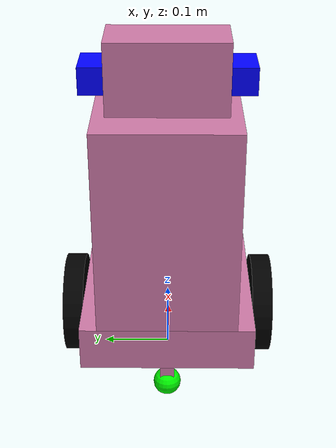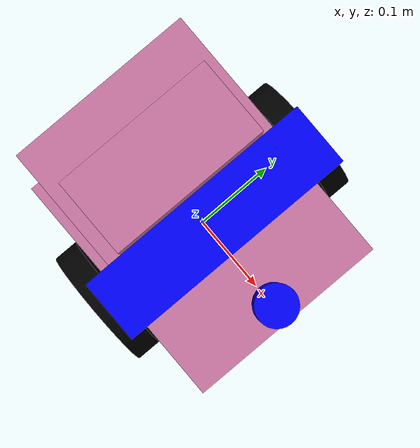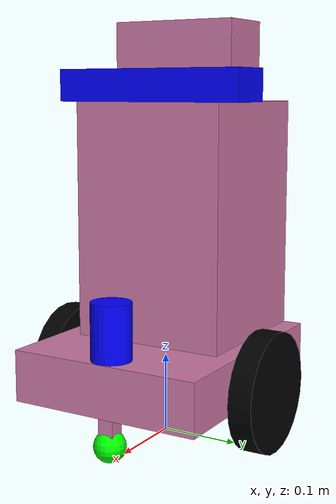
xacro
<?xml version="1.0"?>
<robot name="my_robo"
  xmlns:xacro="http://ros.org/wiki/xacro">

  <xacro:property name="M_PI" value="3.14159274"/>

  <xacro:include filename="$(find se2c_rgbdw_slam)/urdf/imu.urdf.xacro" />
  <xacro:include filename="$(find se2c_rgbdw_slam)/urdf/color.urdf.xacro" />
  <xacro:include filename="$(find se2c_rgbdw_slam)/urdf/my_robo_laser.urdf.xacro" />
  <xacro:include filename="$(find se2c_rgbdw_slam)/urdf/my_robo_camera.urdf.xacro" />

  <xacro:imu_macro parent="base_link" prefix="imu" xyz="0 0 0" />

  <!-- link -->
  <link name="base_footprint"/>

  <joint name="base_link_joint" type="fixed">
    <parent link="base_footprint"/>
    <child link="base_link"/>
    <origin xyz="0 0 0.0925"/>
  </joint>

  <link name="base_link">
    <visual name = "base">
      <geometry>
        <box size="0.300 0.25 0.065"/>
      </geometry>
    </visual>

    <visual name="body">
      <geometry>
        <box size="0.200 0.200 0.300"/>
      </geometry>
      <origin xyz="-0.05 0 0.1825" rpy="0 0 0"/>
    </visual>

    <visual name="top">
      <geometry>
        <box size="0.080 0.165 0.100"/>
      </geometry>
      <origin xyz="-0.055 0 0.3825" rpy="0 0 0"/>
    </visual>

    <visual name="front_caster_assist">
      <geometry>
        <box size="0.02 0.02 0.04"/>
      </geometry>
      <origin xyz="0.130 0 -0.0525"/>
    </visual>

    <visual name="back_caster_assist">
      <geometry>
        <box size="0.02 0.02 0.04"/>
      </geometry>
      <origin xyz="-0.130 0 -0.0525"/>
    </visual>

    <collision nane = "base">
      <geometry>
        <box size="0.300 0.250 0.065"/>
      </geometry>
      <origin xyz="0 0 0" rpy="0 0 0"/>
    </collision>

    <collision nane = "body">
      <geometry>
        <box size="0.200 0.250 0.4"/>
      </geometry>
      <origin xyz="-0.05 0 0.2325" rpy="0 0 0"/>
    </collision>

    <collision nane = "bottom">
      <geometry>
        <box size="0.300 0.250 0.05"/>
      </geometry>
      <origin xyz="0 0 -0.0575" rpy="0 0 0"/>
    </collision>

    <inertial>
      <origin xyz="-0.05 0 0.0575"/>
      <mass value="5.800"/>
      <!--battery1.6kg, mainRobot 5.8kg wheel 0.3kgx2 -->
      <!--calculated as collision cuboid  -->
      <inertia ixx="0.1735275" ixy="0" ixz="0" iyy="0.1579442" iyz="0" izz="0.08641667"/>
    </inertial>
    <!-- for Solid cuboid of width w, height h, depth d, and mass m , ixx=(m(h^2+d^2))/12 iyy=(m(w^2+d^2))/12 izz=(m(w^2+h^2))/12-->
  </link>

  <joint name="left_wheel_joint" type="continuous">
    <parent link="base_link"/>
    <child link="left_wheel_link"/>
    <origin rpy="-1.5707 0 0" xyz="0 0.1425 -0.0175"/>
    <axis xyz="0 0 1"/>
    <limit velocity="1.0" effort="2.0"/>
    <!--decide mortor power-->
    <dynamics damping="0.2"/>
    <!--damping of axes of mortor-->
  </joint>

  <link name="left_wheel_link">
    <visual>
      <geometry>
        <cylinder radius="0.075" length="0.03"/>
      </geometry>
      <origin xyz="0 0 0" rpy="0 0 0"/>
      <material name="black"/>
    </visual>

    <collision>
      <geometry>
        <cylinder radius="0.075" length="0.03"/>
      </geometry>
    </collision>

    <inertial>
      <origin xyz="0 0 0"/>
      <mass value="0.300"/>
      <inertia ixx="0.0004525" ixy="0" ixz="0" iyy="0.0004525" iyz="0" izz="0.00084375"/>
    </inertial>

    <!--for Solid cylinder of radius r, height h and mass m , ixx=(m(3r^2+h^2))/12 iyy=(m(3r^2+h^2))/12 izz=(mr^2)/2-->

  </link>

  <joint name="right_wheel_joint" type="continuous">
    <parent link="base_link"/>
    <child link="right_wheel_link"/>
    <origin rpy="1.5707 0 0" xyz="0 -0.1425 -0.0175"/>
    <axis xyz="0 0 -1"/>
    <limit velocity="1.0" effort="2.0"/>
    <dynamics damping="0.2"/>
  </joint>

  <link name="right_wheel_link">
    <visual>
      <geometry>
        <cylinder radius="0.075" length="0.03"/>
      </geometry>
      <origin xyz="0 0 0" rpy="0 0 0"/>
      <material name="black"/>
    </visual>

    <collision>
      <geometry>
        <cylinder radius="0.075" length="0.03"/>
      </geometry>
    </collision>

    <inertial>
      <origin xyz="0 0 0"/>
      <mass value="0.300"/>
      <inertia ixx="0.0004525" ixy="0" ixz="0" iyy="0.0004525" iyz="0" izz="0.00084375"/>
    </inertial>

  </link>

  <!--caster -->
  <xacro:macro name="caster_macro" params="parent">
    <!-- caster-->
    <!--front caster-->
    <joint name="front_caster_joint" type="fixed">
      <parent link="base_link"/>
      <child link="front_caster"/>
      <origin xyz="0.130 0 -0.072"/>
    </joint>

    <link name="front_caster">
      <visual>
        <geometry>
          <sphere radius="0.02"/>
        </geometry>
        <material name="green">
          <color rgba="0 1 0 1"/>
        </material>
      </visual>

      <collision>
        <geometry>
          <sphere radius="0.02"/>
        </geometry>
      </collision>
    </link>

    <!--back caster-->
    <joint name="back_caster_joint" type="fixed">
      <parent link="base_link"/>
      <child link="back_caster"/>
      <origin xyz="-0.130 0 -0.071"/>
    </joint>

    <link name="back_caster">
      <visual>
        <geometry>
          <sphere radius="0.02"/>
        </geometry>
        <material name="green">
          <color rgba="0 1 0 1"/>
        </material>
      </visual>

      <collision>
        <geometry>
          <sphere radius="0.02"/>
        </geometry>
      </collision>
    </link>

    <!-- end caster-->
  </xacro:macro>
  <xacro:caster_macro parent="caster_assist_link"/>

  <!-- ===============  Transmission =============== -->
  <transmission name="left_wheel_trans">
    <type>transmission_interface/SimpleTransmission</type>
    <joint name="left_wheel_joint">
      <hardwareInterface>hardware_interface/VelocityJointInterface</hardwareInterface>
    </joint>
    <actuator name="left_wheel_motor">
      <hardwareInterface>hardware_interface/VelocityJointInterface</hardwareInterface>
      <mechanicalReduction>1</mechanicalReduction>
    </actuator>
  </transmission>

  <transmission name="right_wheel_trans">
    <type>transmission_interface/SimpleTransmission</type>
    <joint name="right_wheel_joint">
      <hardwareInterface>hardware_interface/VelocityJointInterface</hardwareInterface>
    </joint>
    <actuator name="right_wheel_motor">
      <hardwareInterface>hardware_interface/VelocityJointInterface</hardwareInterface>
      <mechanicalReduction>1</mechanicalReduction>
    </actuator>
  </transmission>

  <gazebo>

    <!-- http://docs.ros.org/jade/api/gazebo_plugins/html/gazebo__ros__diff__drive_8cpp_source.html-->
    <plugin name="differential_drive_controller" filename="libgazebo_ros_diff_drive_noise.so">
      <leftJoint>left_wheel_joint</leftJoint>
      <rightJoint>right_wheel_joint</rightJoint>

      <wheelSeparation>0.285</wheelSeparation>
      <wheelDiameter>0.15</wheelDiameter>
      <updateRate>30</updateRate>
      <wheelAcceleration>1</wheelAcceleration>
      <wheelTorque>10</wheelTorque>

      <commandTopic>cmd_vel</commandTopic>
      <odometryTopic>odom</odometryTopic>
      <odometryFrame>odom</odometryFrame>
      <robotBaseFrame>base_footprint</robotBaseFrame>

      <odometrySource>world</odometrySource>
      <publishOdomTF>true</publishOdomTF>
      <publishWheelTF>false</publishWheelTF>
      <publishTf>true</publishTf>
      <publishWheelJointState>true</publishWheelJointState>
      <legacyMode>false</legacyMode>

      <rosDebugLevel>na</rosDebugLevel>

    </plugin>

  </gazebo>

  <gazebo reference="base_link">
    <selfCollide>true</selfCollide>
    <mu1 value="0.5" />
    <mu2 value="0.5" />
  </gazebo>

  <gazebo reference="left_wheel_link">
    <selfCollide>true</selfCollide>
    <mu1 value="9" />
    <mu2 value="9" />
    <kp>500000.0</kp>
    <kd>10.0</kd>
    <minDepth>0.001</minDepth>
    <maxVel>0.1</maxVel>
    <fdir1>1 0 0</fdir1>
    <material>Gazebo/Black</material>
  </gazebo>

  <gazebo reference="right_wheel_link">
    <selfCollide>true</selfCollide>
    <mu1 value="9" />
    <mu2 value="9" />
    <kp>500000.0</kp>
    <kd>10.0</kd>
    <minDepth>0.001</minDepth>
    <maxVel>0.1</maxVel>
    <fdir1>1 0 0</fdir1>
    <material>Gazebo/Black</material>
  </gazebo>

  <gazebo reference="front_caster">
    <selfCollide>true</selfCollide>
    <mu1 value="0" />
    <mu2 value="0" />
    <material>Gazebo/Green</material>
  </gazebo>

  <gazebo reference="back_caster">
    <selfCollide>true</selfCollide>
    <mu1 value="0" />
    <mu2 value="0" />
    <material>Gazebo/Green</material>
  </gazebo>

  <gazebo reference="laser_link">
    <material>Gazebo/Blue</material>
  </gazebo>

  <gazebo reference="camera_link">
    <material>Gazebo/Blue</material>
  </gazebo>

</robot>

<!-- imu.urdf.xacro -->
<robot name="my_robo"
  xmlns:xacro="http://ros.org/wiki/xacro">
  <xacro:macro name="imu_macro" params="parent prefix xyz">
    <joint name="imu_joint" type="fixed">
      <parent link="${parent}"/>
      <child link="${prefix}_link"/>
      <origin xyz="${xyz}" rpy="0 0 0"/>
    </joint>
    <link name="${prefix}_link"/>

    <gazebo reference="${prefix}_link">
      <gravity>true</gravity>
      <sensor name="imu_sensor" type="imu">
        <always_on>true</always_on>
        <update_rate>100</update_rate>
        <visualize>true</visualize>
        <topic>data</topic>
        <plugin filename="libgazebo_ros_imu_sensor.so" name="imu_plugin">
          <topicName>${prefix}/data</topicName>
          <bodyName>${prefix}_link</bodyName>
          <updateRateHZ>10.0</updateRateHZ>
          <gaussianNoise>0.0</gaussianNoise>
          <xyzOffset>0 0 0</xyzOffset>
          <rpyOffset>0 0 0</rpyOffset>
          <frameName>${prefix}_link</frameName>
        </plugin>
        <pose>0 0 0 0 0 0</pose>
      </sensor>
    </gazebo>
  </xacro:macro>
</robot>

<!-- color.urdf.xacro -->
<robot name="my_robo"
  xmlns:xacro="http://ros.org/wiki/xacro">
  <!-- Init colour -->
  <material name="black">
    <color rgba="0.0 0.0 0.0 1.0"/>
  </material>

  <material name="dark">
    <color rgba="0.3 0.3 0.3 1.0"/>
  </material>
  <material name="light_black">
    <color rgba="0.4 0.4 0.4 1.0"/>
  </material>

  <material name="blue">
    <color rgba="0.0 0.0 0.8 1.0"/>
  </material>

  <material name="green">
    <color rgba="0.0 0.8 0.0 1.0"/>
  </material>

  <material name="grey">
    <color rgba="0.5 0.5 0.5 1.0"/>
  </material>

  <material name="orange">
    <color rgba="${255/255} ${108/255} ${10/255} 1.0"/>
  </material>

  <material name="brown">
    <color rgba="${222/255} ${207/255} ${195/255} 1.0"/>
  </material>

  <material name="red">
    <color rgba="0.8 0.0 0.0 1.0"/>
  </material>

  <material name="white">
    <color rgba="1.0 1.0 1.0 1.0"/>
  </material>

</robot>

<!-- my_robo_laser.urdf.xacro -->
<robot name="my_robo"
  xmlns:xacro="http://ros.org/wiki/xacro">

  <xacro:macro name="laser_macro" params="parent prefix xyz">
    <joint name="${prefix}_joint" type="fixed">
      <parent link="${parent}"/>
      <child link="laser_link"/>
      <origin xyz="${xyz}" rpy="0 0 0"/>
    </joint>

    <link name="laser_link">
      <visual>
        <origin xyz="0 0 0" rpy="0 0 0" />
        <geometry>
          <cylinder radius="0.025" length="0.07" />
        </geometry>
        <material name="blue">
          <color rgba="0 0 1 1"/>
        </material>
      </visual>

      <collision>
        <origin xyz="0 0 0" rpy="0 0 0"/>
        <geometry>
          <cylinder radius="0.025" length="0.07" />
        </geometry>
      </collision>

      <inertial>
        <origin xyz="0 0 -0.05"/>
        <mass value="0.160"/>
        <inertia ixx="0.00009" ixy="0" ixz="0" iyy="0.00009" iyz="0" izz="0.00005"/>
      </inertial>
    </link>

    <joint name="to_${prefix}_joint" type="fixed">
      <parent link="laser_link"/>
      <child link="laser"/>
      <origin xyz="0.025 0 0"/>
    </joint>

    <link name="laser"/>

    <gazebo reference="laser">
      <sensor type="ray" name="${prefix}">
        <pose>0 0 0 0 0 0</pose>
        <visualize>false</visualize>
        <update_rate>10</update_rate>
        <ray>
          <scan>
            <horizontal>
              <samples>683</samples>-->              <!--1024[points]*240[deg]/360[deg]-->
              <resolution>1</resolution>
              <min_angle>${radians(-120)}</min_angle>
              <max_angle>${radians( 120)}</max_angle>
            </horizontal>
          </scan>
          <range>
            <min>0.06</min>
            <max>4.0</max>
            <resolution>0.01</resolution>
          </range>
          <noise>
            <type>gaussian</type>
            <mean>0.0</mean>
            <stddev>0.02</stddev>
          </noise>
        </ray>
        <plugin name="gazebo_ros_lidar_controller" filename="libgazebo_ros_laser.so">
          <topicName>/scan</topicName>
          <frameName>laser</frameName>
        </plugin>
      </sensor>

    </gazebo>

  </xacro:macro>
  <xacro:laser_macro parent="base_link" prefix="laser_sensor" xyz="0.125 0 0.0675"/>

</robot>

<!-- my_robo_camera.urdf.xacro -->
<robot name="my_robo"
  xmlns:xacro="http://ros.org/wiki/xacro">

  <joint name="camera_base_joint" type="fixed">
    <parent link="base_link"/>
    <child link="camera_link"/>
    <origin xyz="0.0175 0 0.3525"/>
  </joint>

  <link name="camera_link">
    <visual>
      <origin xyz="0 0 0" rpy="0 0 0" />
      <geometry>
        <box size="0.065 0.25 0.04"/>
      </geometry>
      <material name="blue">
        <color rgba="0 0 1 1"/>
      </material>
    </visual>
    <collision>
      <origin xyz="0 0 0" rpy="0 0 0"/>
      <geometry>
        <box size="0.065 0.25 0.04"/>
      </geometry>
    </collision>
  </link>

  <joint name="camera_joint" type="fixed">
    <parent link="camera_link"/>
    <child link="openni_camera"/>
    <origin xyz="0.0325 0 0" rpy="0 0 0"/>
  </joint>

  <link name="openni_camera"/>

  <!-- parameter reference https://vision.in.tum.de/data/datasets/rgbd-dataset/file_formats -->
  <gazebo reference="openni_camera">
    <sensor type="depth" name="Kinectv2">
      <always_on>true</always_on>
      <update_rate>30.0</update_rate>

      <camera name="Kinectv2">
        <pose>0 0 0 0 0 0</pose>
        <horizontal_fov>1.4813863886</horizontal_fov>        <!-- viewing angle 85degree => f=525, width=960 -->
        <image>
          <width>960</width>
          <height>540</height>
          <format>R8G8B8</format>
        </image>
        <clip>
          <near>0.0001</near>
          <far>20.0</far>
        </clip>
        <noise>
          <type>gaussian</type>
          <mean>0.0</mean>
          <stddev>0.5</stddev>
        </noise>
      </camera>

      <plugin name="camera_controller" filename="libgazebo_ros_openni_kinect.so">
        <baseline>0.075</baseline>
        <alwaysOn>true</alwaysOn>
        <updateRate>0.0</updateRate>
        <cameraName>kinect_v2</cameraName>
        <frameName>openni_camera</frameName>

        <imageTopicName>/camera/rgb/image_color</imageTopicName>
        <cameraInfoTopicName>/camera/rgb/camera_info</cameraInfoTopicName>
        <depthImageTopicName>/camera/depth/image</depthImageTopicName>
        <depthImageCameraInfoTopicName>/camera/depth/camera_info</depthImageCameraInfoTopicName>
        <pointCloudTopicName>/camera/depth/points</pointCloudTopicName>

        <pointCloudCutoff>0.1</pointCloudCutoff>
        <pointCloudCutoffMax>6.0</pointCloudCutoffMax>

        <distortionK1>0.001</distortionK1>
        <distortionK2>0.001</distortionK2>
        <distortionK3>0.001</distortionK3>
        <distortionT1>0.001</distortionT1>
        <distortionT2>0.001</distortionT2>
        <CxPrime>0.0</CxPrime>
        <Cx>477</Cx>
        <Cy>261</Cy>
        <focalLength>524.954599</focalLength>
        <hackBaseline>0</hackBaseline>
      </plugin>

    </sensor>

    <allow_auto_disable>0</allow_auto_disable>
  </gazebo>

</robot>
